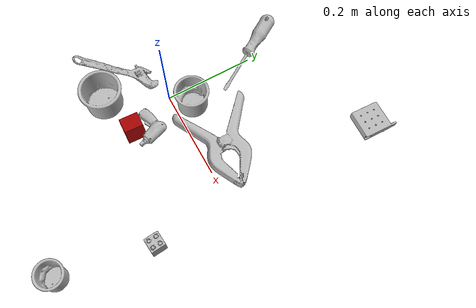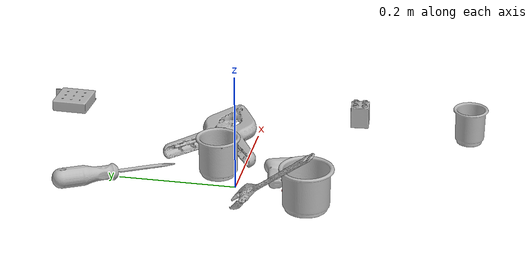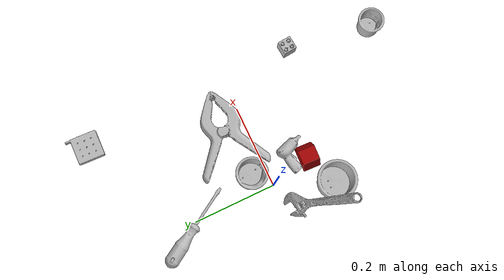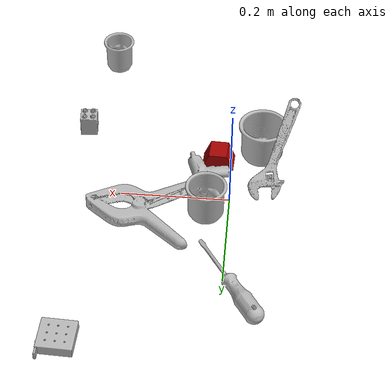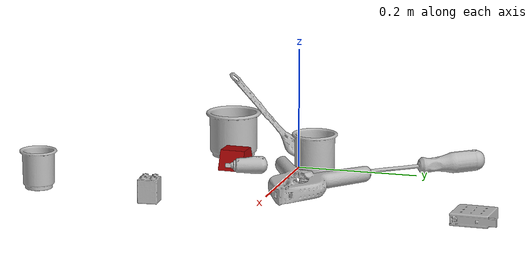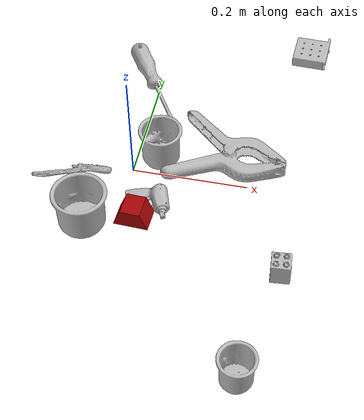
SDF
<sdf version="1.4">
  <world name="default">
    <light name="light1" type="point">
      <pose>0 0 1 0 0 0</pose>
      <diffuse>3 3 3 1</diffuse>
      <specular>3 3 3 1</specular>
    </light>
    <light name="light2" type="point">
      <pose>0 0.5 2 0 0 0</pose>
      <diffuse>1 1 1 1</diffuse>
      <specular>1 1 1 1</specular>
    </light>
    <light name="light3" type="point">
      <pose>0 0.5 2 0 0 0</pose>
      <diffuse>3 3 3 1</diffuse>
      <specular>3 3 3 1</specular>
    </light>
    <scene>
      <ambient>0.7 0.7 0.7</ambient>
    </scene>
    <model name="cup1">
      <link name="link_cup1">
        <collision name="default">
          <geometry>
            <mesh>
              <uri>model://b_cups/collision_meshes/collision.obj</uri>
              <scale>1.0 1.0 1.0</scale>
            </mesh>
          </geometry>
          <surface>
            <friction>
              <ode>
                <mu>0.5</mu>
                <mu2>0.5</mu2>
              </ode>
            </friction>
          <contact>
        <ode>
            <max_vel>0</max_vel>
            <min_depth>0.0001</min_depth>
            <kp>1e8</kp>
        </ode>
    </contact></surface>
        </collision>
        <visual name="default">
          <geometry>
            <mesh>
              <uri>model://b_cups/visual_meshes/visual.dae</uri>
              <scale>1.0 1.0 1.0</scale>
            </mesh>
          </geometry>
        </visual>
        <inertial>
          <mass>0.03190340846776962</mass>
          <pose>0.0005182004533708096 0.0018058607820421457 -0.0013381806202232838 0.11356328214070865 0.03872483993123738 -0.34569243052877063</pose>
          <inertia>
            <ixx>2.0883017e-05</ixx>
            <iyy>2.0486541e-05</iyy>
            <izz>1.7572664e-05</izz>
            <ixy>0</ixy>
            <ixz>0</ixz>
            <iyz>0</iyz>
          </inertia>
        </inertial>
      </link>
      <pose>0.2476675659418106 -0.36924830079078674 0.03199610859155655 -0.007627527282503431 -0.0038403880218720278 2.5651602493003667</pose>
    </model>
    <model name="cup2">
      <link name="link_cup2">
        <collision name="default">
          <geometry>
            <mesh>
              <uri>model://e_cups/collision_meshes/collision.obj</uri>
              <scale>1.0 1.0 1.0</scale>
            </mesh>
          </geometry>
          <surface>
            <friction>
              <ode>
                <mu>0.5</mu>
                <mu2>0.5</mu2>
              </ode>
            </friction>
          <contact>
        <ode>
            <max_vel>0</max_vel>
            <min_depth>0.0001</min_depth>
            <kp>1e8</kp>
        </ode>
    </contact></surface>
        </collision>
        <visual name="default">
          <geometry>
            <mesh>
              <uri>model://e_cups/visual_meshes/visual.dae</uri>
              <scale>1.0 1.0 1.0</scale>
            </mesh>
          </geometry>
        </visual>
        <inertial>
          <mass>0.09350046515464783</mass>
          <pose>0.0011355748865753412 0.0028797851409763098 -0.0038829720579087734 0.69524087765449 0.08767898447354379 -0.5235249697507389</pose>
          <inertia>
            <ixx>8.2444014e-05</ixx>
            <iyy>8.6165805e-05</iyy>
            <izz>7.882601e-05</izz>
            <ixy>0</ixy>
            <ixz>0</ixz>
            <iyz>0</iyz>
          </inertia>
        </inertial>
      </link>
      <pose>0.0414002351462841 0.03797035664319992 0.03559989482164383 7.053847790855824e-05 -8.852697819806365e-05 2.074021045371569</pose>
    </model>
    <model name="cup3">
      <link name="link_cup3">
        <collision name="default">
          <geometry>
            <mesh>
              <uri>model://h_cups/collision_meshes/collision.obj</uri>
              <scale>1.0 1.0 1.0</scale>
            </mesh>
          </geometry>
          <surface>
            <friction>
              <ode>
                <mu>0.5</mu>
                <mu2>0.5</mu2>
              </ode>
            </friction>
          <contact>
        <ode>
            <max_vel>0</max_vel>
            <min_depth>0.0001</min_depth>
            <kp>1e8</kp>
        </ode>
    </contact></surface>
        </collision>
        <visual name="default">
          <geometry>
            <mesh>
              <uri>model://h_cups/visual_meshes/visual.dae</uri>
              <scale>1.0 1.0 1.0</scale>
            </mesh>
          </geometry>
        </visual>
        <inertial>
          <mass>0.05626832693815231</mass>
          <pose>-2.7024709197576158e-05 0.00023018589126877487 -0.0018405396258458495 -0.02436208446622447 0.06545190020339471 0.12885609358770897</pose>
          <inertia>
            <ixx>7.2667885e-05</ixx>
            <iyy>7.180077e-05</iyy>
            <izz>7.620872e-05</izz>
            <ixy>0</ixy>
            <ixz>0</ixz>
            <iyz>0</iyz>
          </inertia>
        </inertial>
      </link>
      <pose>-0.05341121181845665 -0.12914082407951355 0.0377580001950264 5.466626624763072e-08 4.2531429707157467e-07 -1.6858309906691562</pose>
    </model>
    <model name="toy1">
      <link name="link_toy1">
        <collision name="default">
          <geometry>
            <mesh>
              <uri>model://nine_hole_peg_test/collision_meshes/collision.obj</uri>
              <scale>0.5 0.5 0.5</scale>
            </mesh>
          </geometry>
          <surface>
            <friction>
              <ode>
                <mu>0.5</mu>
                <mu2>0.5</mu2>
              </ode>
            </friction>
          <contact>
        <ode>
            <max_vel>0</max_vel>
            <min_depth>0.0001</min_depth>
            <kp>1e8</kp>
        </ode>
    </contact></surface>
        </collision>
        <visual name="default">
          <geometry>
            <mesh>
              <uri>model://nine_hole_peg_test/visual_meshes/visual.dae</uri>
              <scale>0.5 0.5 0.5</scale>
            </mesh>
          </geometry>
        </visual>
        <inertial>
          <mass>0.06318242102861404</mass>
          <pose>-0.0023086941801011562 -0.004823808092623949 1.3230346667114645e-05 -0.0014666789322941463 0.0007194184826049595 -0.6342412444031488</pose>
          <inertia>
            <ixx>2.4699024e-05</ixx>
            <iyy>2.3061213e-05</iyy>
            <izz>4.327997e-05</izz>
            <ixy>0</ixy>
            <ixz>0</ixz>
            <iyz>0</iyz>
          </inertia>
        </inertial>
      </link>
      <pose>0.2676105201244354 0.3610483705997467 0.010385499335825443 -1.1751871669737305e-08 2.8800432278892175e-09 -0.034958312721879055</pose>
    </model>
    <model name="toy2">
      <link name="link_toy2">
        <collision name="default">
          <geometry>
            <mesh>
              <uri>model://prism/collision_meshes/collision.obj</uri>
              <scale>0.5 0.5 0.5</scale>
            </mesh>
          </geometry>
          <surface>
            <friction>
              <ode>
                <mu>0.5</mu>
                <mu2>0.5</mu2>
              </ode>
            </friction>
          <contact>
        <ode>
            <max_vel>0</max_vel>
            <min_depth>0.0001</min_depth>
            <kp>1e8</kp>
        </ode>
    </contact></surface>
        </collision>
        <visual name="default">
          <geometry>
            <mesh>
              <uri>model://prism/visual_meshes/visual.dae</uri>
              <scale>0.5 0.5 0.5</scale>
            </mesh>
          </geometry>
        </visual>
        <inertial>
          <mass>0.058882199227809906</mass>
          <pose>-4.92679828312248e-05 -2.480786349678965e-07 -0.0016934550367295742 0.0 0.00655918030046738 0.0</pose>
          <inertia>
            <ixx>1.32851155e-05</ixx>
            <iyy>1.6055232e-05</iyy>
            <izz>1.9665738e-05</izz>
            <ixy>0</ixy>
            <ixz>0</ixz>
            <iyz>0</iyz>
          </inertia>
        </inertial>
      </link>
      <pose>0.027162929996848106 -0.10150185972452164 0.016084926202893257 -2.9406594904791935e-05 2.18301244449577e-05 3.097131656041195</pose>
    </model>
    <model name="toy3">
      <link name="link_toy3">
        <collision name="default">
          <geometry>
            <mesh>
              <uri>model://b_toy_airplane/collision_meshes/collision.obj</uri>
              <scale>0.5 0.5 0.5</scale>
            </mesh>
          </geometry>
          <surface>
            <friction>
              <ode>
                <mu>0.5</mu>
                <mu2>0.5</mu2>
              </ode>
            </friction>
          <contact>
        <ode>
            <max_vel>0</max_vel>
            <min_depth>0.0001</min_depth>
            <kp>1e8</kp>
        </ode>
    </contact></surface>
        </collision>
        <visual name="default">
          <geometry>
            <mesh>
              <uri>model://b_toy_airplane/visual_meshes/visual.dae</uri>
              <scale>0.5 0.5 0.5</scale>
            </mesh>
          </geometry>
        </visual>
        <inertial>
          <mass>0.06070837751030922</mass>
          <pose>0.002540682442486286 0.0020077924709767103 0.0047715334221720695 -0.040018114249042835 -0.04022179473329346 -0.5601502235260123</pose>
          <inertia>
            <ixx>2.8176557e-05</ixx>
            <iyy>1.1262445e-05</iyy>
            <izz>3.5054447e-05</izz>
            <ixy>0</ixy>
            <ixz>0</ixz>
            <iyz>0</iyz>
          </inertia>
        </inertial>
      </link>
      <pose>0.049992695450782776 -0.06341203302145004 0.008444111794233322 0.17127044964152258 0.01582028012259801 -1.2469932350834607</pose>
    </model>
    <model name="toy4">
      <link name="link_toy4">
        <collision name="default">
          <geometry>
            <mesh>
              <uri>model://f_lego_duplo/collision_meshes/collision.obj</uri>
              <scale>1.0 1.0 1.0</scale>
            </mesh>
          </geometry>
          <surface>
            <friction>
              <ode>
                <mu>0.5</mu>
                <mu2>0.5</mu2>
              </ode>
            </friction>
          <contact>
        <ode>
            <max_vel>0</max_vel>
            <min_depth>0.0001</min_depth>
            <kp>1e8</kp>
        </ode>
    </contact></surface>
        </collision>
        <visual name="default">
          <geometry>
            <mesh>
              <uri>model://f_lego_duplo/visual_meshes/visual.dae</uri>
              <scale>1.0 1.0 1.0</scale>
            </mesh>
          </geometry>
        </visual>
        <inertial>
          <mass>0.029542475938796997</mass>
          <pose>2.369392677792348e-05 0.00013393184053711593 0.0018837879179045558 0.029838766168002753 -0.014424835911361083 -0.6756712748416152</pose>
          <inertia>
            <ixx>6.2424897e-06</ixx>
            <iyy>6.2981026e-06</iyy>
            <izz>5.4187462e-06</izz>
            <ixy>0</ixy>
            <ixz>0</ixz>
            <iyz>0</iyz>
          </inertia>
        </inertial>
      </link>
      <pose>0.2825168967247009 -0.17020486295223236 0.02187112160027027 6.871102706052487e-05 5.495500465306609e-05 0.08357301021219743</pose>
    </model>
    <model name="hardware1">
      <link name="link_hardware1">
        <collision name="default">
          <geometry>
            <mesh>
              <uri>model://extra_large_clamp/collision_meshes/collision.obj</uri>
              <scale>1.0 1.0 1.0</scale>
            </mesh>
          </geometry>
          <surface>
            <friction>
              <ode>
                <mu>0.5</mu>
                <mu2>0.5</mu2>
              </ode>
            </friction>
          <contact>
        <ode>
            <max_vel>0</max_vel>
            <min_depth>0.0001</min_depth>
            <kp>1e8</kp>
        </ode>
    </contact></surface>
        </collision>
        <visual name="default">
          <geometry>
            <mesh>
              <uri>model://extra_large_clamp/visual_meshes/visual.dae</uri>
              <scale>1.0 1.0 1.0</scale>
            </mesh>
          </geometry>
        </visual>
        <inertial>
          <mass>0.20469266176223755</mass>
          <pose>0.00323202065192163 -7.615445792907849e-05 0.0003172155993524939 0.013786991356050505 -0.0005066836095273004 -0.000893628832478523</pose>
          <inertia>
            <ixx>0.00031109934</ixx>
            <iyy>0.0005356169</iyy>
            <izz>0.00081831246</izz>
            <ixy>0</ixy>
            <ixz>0</ixz>
            <iyz>0</iyz>
          </inertia>
        </inertial>
      </link>
      <pose>0.160066157579422 0.05240688472986221 0.01804858259856701 -0.02951917711034 0.010022953578672982 -0.10864796223546545</pose>
    </model>
    <model name="hardware2">
      <link name="link_hardware2">
        <collision name="default">
          <geometry>
            <mesh>
              <uri>model://flat_screwdriver/collision_meshes/collision.obj</uri>
              <scale>1.0 1.0 1.0</scale>
            </mesh>
          </geometry>
          <surface>
            <friction>
              <ode>
                <mu>0.5</mu>
                <mu2>0.5</mu2>
              </ode>
            </friction>
          <contact>
        <ode>
            <max_vel>0</max_vel>
            <min_depth>0.0001</min_depth>
            <kp>1e8</kp>
        </ode>
    </contact></surface>
        </collision>
        <visual name="default">
          <geometry>
            <mesh>
              <uri>model://flat_screwdriver/visual_meshes/visual.dae</uri>
              <scale>1.0 1.0 1.0</scale>
            </mesh>
          </geometry>
        </visual>
        <inertial>
          <mass>0.09510745853185654</mass>
          <pose>-0.048918697983026505 -0.0006576799787580967 -0.000614091579336673 -0.5614762322958965 -0.003233723970645699 0.006982278511552064</pose>
          <inertia>
            <ixx>1.1236876e-05</ixx>
            <iyy>0.00014265477</iyy>
            <izz>0.00014258873</izz>
            <ixy>0</ixy>
            <ixz>0</ixz>
            <iyz>0</iyz>
          </inertia>
        </inertial>
      </link>
      <pose>-0.010653384029865265 0.20873545110225677 0.015338651835918427 -0.21441215852859405 0.040694540730287596 -1.026608214362523</pose>
    </model>
    <model name="hardware3">
      <link name="link_hardware3">
        <collision name="default">
          <geometry>
            <mesh>
              <uri>model://adjustable_wrench/collision_meshes/collision.obj</uri>
              <scale>1.0 1.0 1.0</scale>
            </mesh>
          </geometry>
          <surface>
            <friction>
              <ode>
                <mu>0.5</mu>
                <mu2>0.5</mu2>
              </ode>
            </friction>
          <contact>
        <ode>
            <max_vel>0</max_vel>
            <min_depth>0.0001</min_depth>
            <kp>1e8</kp>
        </ode>
    </contact></surface>
        </collision>
        <visual name="default">
          <geometry>
            <mesh>
              <uri>model://adjustable_wrench/visual_meshes/visual.dae</uri>
              <scale>1.0 1.0 1.0</scale>
            </mesh>
          </geometry>
        </visual>
        <inertial>
          <mass>0.02741360291838646</mass>
          <pose>0.03740980476140976 -0.002896887017413974 -0.0011149230413138866 -0.0144733350781748 0.006656025939833136 -0.010954202845362587</pose>
          <inertia>
            <ixx>5.610589e-06</ixx>
            <iyy>6.5665416e-05</iyy>
            <izz>7.0977985e-05</izz>
            <ixy>0</ixy>
            <ixz>0</ixz>
            <iyz>0</iyz>
          </inertia>
        </inertial>
      </link>
      <pose>-0.08449150621891022 -0.07274707406759262 0.060924917459487915 -0.2812967918437704 0.6701854356311978 1.1799555071074685</pose>
    </model>
  <physics type="ode">
      <max_contacts>50</max_contacts>
      <ode>
        <solver>
          <type>quick</type>
          <iters>75</iters>
        </solver>
        <constraints>
          <contact_max_correcting_vel>0</contact_max_correcting_vel>
          <contact_surface_layer>0</contact_surface_layer>
        </constraints>
      </ode>
    </physics></world>
</sdf>
